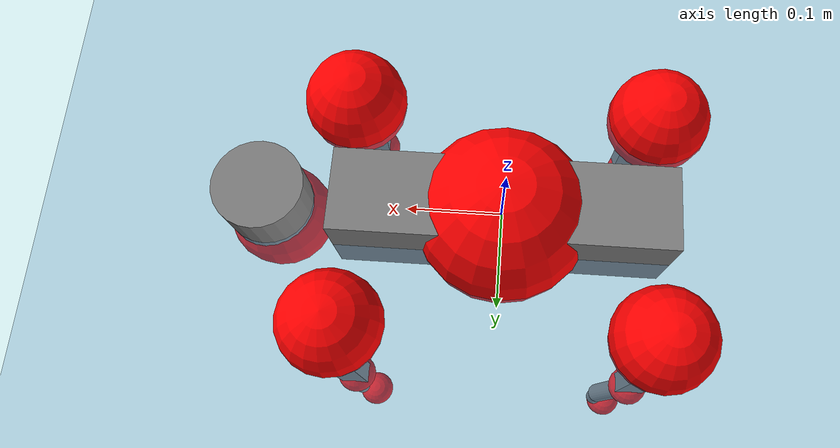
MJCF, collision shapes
<mujoco model="go2">
  <compiler angle="radian" assetdir="assets" balanceinertia="true" inertiafromgeom="false"/>

  <option timestep="0.005" density="1.2" viscosity="2e-05"/>

  <size nkey="1"/>

  <visual>
    <quality shadowsize="8192"/>
    <map shadowclip="0.5"/>
  </visual>

  <default>
    <default class="/">
      <geom contype="0" conaffinity="0" group="1" solref="-1000 -80"/>
      <site size="0.01 0.005 0.005" group="5"/>
      <general forcelimited="true" biastype="affine" gainprm="20" biasprm="0 -20 -0.5"/>
      <default class="go2">
        <joint armature="0.01" damping="0.01" frictionloss="0.2"/>
        <geom condim="1" margin="0.001"/>
        <default class="visual">
          <geom type="mesh" group="2"/>
        </default>
        <default class="collision">
          <geom group="3"/>
          <default class="foot">
            <geom size="0.022 0 0" condim="6" priority="1" friction="0.8 0.02 0.01" solimp="0.015 1 0.022"/>
          </default>
        </default>
        <default class="reward_collision_sphere">
          <geom group="5" rgba="1 0 0 1"/>
        </default>
      </default>
    </default>
  </default>

  <asset>
    <texture type="skybox" colorspace="auto" name="//unnamed_texture_0" builtin="gradient" rgb1="0.95 0.95 0.95" rgb2="0.95 0.95 0.95" width="100" height="600"/>
    <texture type="2d" colorspace="auto" name="texplane" builtin="checker" rgb1="0.345 0.575 0.748" rgb2="0.345 0.575 0.748" markrgb="1 1 1" width="512" height="512"/>
    <material name="MatPlane" class="/" texture="texplane" texuniform="true" texrepeat="2 2" specular="0.9"/>
    <material name="metal" class="/" rgba="0.9 0.95 0.95 1"/>
    <material name="black" class="/" rgba="0 0 0 1"/>
    <material name="white" class="/"/>
    <material name="gray" class="/" rgba="0.671705 0.692426 0.77427 1"/>
    <mesh name="base_0" class="/" file="base_0.obj"/>
    <mesh name="base_1" class="/" file="base_1.obj"/>
    <mesh name="base_2" class="/" file="base_2.obj"/>
    <mesh name="base_3" class="/" file="base_3.obj"/>
    <mesh name="base_4" class="/" file="base_4.obj"/>
    <mesh name="hip_0" class="/" file="hip_0.obj"/>
    <mesh name="hip_1" class="/" file="hip_1.obj"/>
    <mesh name="thigh_0" class="/" file="thigh_0.obj"/>
    <mesh name="thigh_1" class="/" file="thigh_1.obj"/>
    <mesh name="thigh_mirror_0" class="/" file="thigh_mirror_0.obj"/>
    <mesh name="thigh_mirror_1" class="/" file="thigh_mirror_1.obj"/>
    <mesh name="calf_0" class="/" file="calf_0.obj"/>
    <mesh name="calf_1" class="/" file="calf_1.obj"/>
    <mesh name="calf_mirror_0" class="/" file="calf_mirror_0.obj"/>
    <mesh name="calf_mirror_1" class="/" file="calf_mirror_1.obj"/>
    <mesh name="foot" class="/" file="foot.obj"/>
  </asset>

  <worldbody>
    <geom name="floor" class="/" size="100 100 0.125" type="plane" group="0" material="MatPlane"/>
    <light name="toplight_shadow" class="/" pos="0 0 5" dir="0.0990148 0.0990148 -0.990148" type="directional" ambient="0.04 0.04 0.04" diffuse="0.55 0.55 0.55" specular="0.12 0.12 0.12"/>
    <light name="toplight_fill" class="/" pos="0 0 5" dir="0.0990148 0.0990148 -0.990148" type="directional" castshadow="false" ambient="0.04 0.04 0.04" diffuse="0.3 0.3 0.3" specular="0.08 0.08 0.08"/>
    <body name="trunk" childclass="go2" pos="-0.00103795 0.000202392 -0.00232591" quat="0.999999 0.00101713 0.000648616 -0.000478769">
      <inertial pos="0.0167472 0.00266271 -0.00484649" quat="0.0101748 0.718721 0.000510708 0.695224" mass="5.51352" diaginertia="0.0548472 0.13591 0.0119065"/>
      <joint name="//unnamed_joint_0" type="free" armature="0" damping="0" frictionloss="0"/>
      <geom name="//unnamed_geom_1" class="visual" material="black" mesh="base_0"/>
      <geom name="//unnamed_geom_2" class="visual" material="black" mesh="base_1"/>
      <geom name="//unnamed_geom_3" class="visual" material="black" mesh="base_2"/>
      <geom name="//unnamed_geom_4" class="visual" material="white" mesh="base_3"/>
      <geom name="//unnamed_geom_5" class="visual" material="gray" mesh="base_4"/>
      <geom name="trunk_1" class="collision" size="0.174874 0.0434627 0.052992" type="box"/>
      <geom name="trunk_2" class="collision" size="0.0464842 0.0418358" pos="0.247417 0 0.00861344" type="cylinder"/>
      <geom name="trunk_3" class="collision" size="0.0436951" pos="0.254362 0 -0.0516806"/>
      <geom name="//unnamed_geom_9" class="reward_collision_sphere" size="0.0929684"/>
      <geom name="//unnamed_geom_10" class="reward_collision_sphere" size="0.055781" pos="0.243076 0 -0.0387605"/>
      <site name="imu" pos="-0.0269115 0.0108807 0.0225276" size="0.00929684"/>
      <camera name="track" pos="0 -2.11916 0" quat="0.707107 0.707107 0 0" mode="trackcom"/>
      <camera name="ego_camera" pos="0.270856 0 0.0387605" quat="-0.5 -0.5 0.5 0.5"/>
      <body name="FL_hip" pos="0.168059 0.051618 0.00142008" quat="1 1.68194e-05 -0.00017984 -0.000124118">
        <inertial pos="-0.0073635 0.00270806 -0.00187959" quat="0.50327 0.501535 0.506697 0.488304" mass="0.530805" diaginertia="0.000438839 0.000776512 0.00022173"/>
        <joint name="FL_hip_joint" pos="0 0 0" axis="0.999983 0.0036665 -0.00457511" range="-1.05005 1.08792" armature="0.00920779" damping="0" frictionloss="0.203424"/>
        <geom name="//unnamed_geom_11" class="visual" material="metal" mesh="hip_0"/>
        <geom name="//unnamed_geom_12" class="visual" material="gray" mesh="hip_1"/>
        <geom name="//unnamed_geom_13" class="collision" size="0.0427654 0.0185937" pos="0 0.0847662 0" quat="0.707107 0.707107 0 0" type="cylinder"/>
        <geom name="//unnamed_geom_14" class="reward_collision_sphere" size="0.055781" pos="0 0.0741704 0"/>
        <body name="FL_thigh" pos="-0.0035616 0.102641 0.0017764" quat="1 0.00020735 0.000121636 -0.000171834">
          <inertial pos="-0.00210905 -0.0233658 -0.0281372" quat="0.829533 0.0844189 -0.0206207 0.551654" mass="0.886203" diaginertia="0.0028018 0.00754155 0.000388137"/>
          <joint name="FL_thigh_joint" pos="0 0 0" axis="-0.00296021 0.999995 0.000729509" stiffness="0.00908415" range="-1.60822 3.48381" armature="0.00817407" damping="0.0186648" frictionloss="0.185966"/>
          <geom name="//unnamed_geom_15" class="visual" material="metal" mesh="thigh_0"/>
          <geom name="//unnamed_geom_16" class="visual" material="gray" mesh="thigh_1"/>
          <geom name="//unnamed_geom_17" class="collision" size="0.0990113 0.0113886 0.0158046" pos="0 0 -0.0917331" quat="0.707107 0 0.707107 0" type="box"/>
          <body name="FL_calf" pos="0.000831004 -0.000773367 -0.184313" quat="1 -8.88458e-05 7.23491e-05 -0.000103856">
            <inertial pos="0.00358782 -0.00316624 -0.12232" quat="0.71049 0.0014187 -0.00458541 0.703691" mass="0.194536" diaginertia="0.000708741 0.00192922 2.505e-05"/>
            <joint name="FL_calf_joint" pos="0 0 0" axis="-0.00584215 0.999857 -0.0158909" range="-2.76233 -0.791074" armature="0.0094588" damping="0" frictionloss="0.206444"/>
            <geom name="//unnamed_geom_18" class="visual" material="gray" mesh="calf_0"/>
            <geom name="//unnamed_geom_19" class="visual" material="black" mesh="calf_1"/>
            <geom name="FL_calf0" class="collision" size="0.0111562 0.055781" pos="0.00694504 0 -0.0516806" quat="0.994493 0 -0.104807 0" type="cylinder"/>
            <geom name="//unnamed_geom_21" class="collision" size="0.0102265 0.0302147" pos="0.0173626 0 -0.127479" quat="0.999688 0 0.0249974 0" type="cylinder"/>
            <geom name="//unnamed_geom_22" class="visual" pos="0 0 -0.183466" quat="1 0 0 0" material="black" mesh="foot"/>
            <geom name="FL_foot" class="foot" size="0.0153468" pos="-0.00173626 0 -0.183466"/>
            <geom name="//unnamed_geom_24" class="reward_collision_sphere" size="0.0232421"/>
            <geom name="//unnamed_geom_25" class="reward_collision_sphere" size="0.0232421" pos="-0.00173626 0 -0.183466"/>
            <site name="FL_foot" class="foot" pos="-0.00173626 0 -0.183466" size="0.00929684"/>
          </body>
        </body>
      </body>
      <body name="FR_hip" pos="0.167554 -0.0480786 0.00241953" quat="0.999999 -0.00100507 0.000360462 -0.000462401">
        <inertial pos="-0.00492763 -0.0017493 0.000315156" quat="0.491614 0.508924 0.506503 0.492713" mass="0.559715" diaginertia="0.000430064 0.000790503 0.000224339"/>
        <joint name="FR_hip_joint" pos="0 0 0" axis="0.999945 -0.008467 0.00625389" range="-1.09845 1.01056" armature="0.00910568" damping="0" frictionloss="0.208919"/>
        <geom name="//unnamed_geom_26" class="visual" pos="0 1.72693e-09 7.40716e-08" quat="4.63268e-05 1 0 0" material="metal" mesh="hip_0"/>
        <geom name="//unnamed_geom_27" class="visual" pos="0 2.79956e-09 -1.83207e-07" quat="4.63268e-05 1 0 0" material="gray" mesh="hip_1"/>
        <geom name="//unnamed_geom_28" class="collision" size="0.0427654 0.0185937" pos="0 -0.0847662 0" quat="0.707107 0.707107 0 0" type="cylinder"/>
        <geom name="//unnamed_geom_29" class="reward_collision_sphere" size="0.055781" pos="0 -0.0741704 0"/>
        <body name="FR_thigh" pos="-0.000516511 -0.103608 3.38511e-05" quat="1 0.000654494 -0.000220279 -0.000307959">
          <inertial pos="-0.00380836 0.0242564 -0.0286268" quat="0.552253 -0.0198237 0.0854277 0.829051" mass="0.959617" diaginertia="0.00294452 0.0075431 0.000423897"/>
          <joint name="FR_thigh_joint" pos="0 0 0" axis="0.00589992 -0.99997 -0.00497474" stiffness="0.013038" range="-3.49471 1.52632" armature="0.00867067" damping="0.00716201" frictionloss="0.160111"/>
          <geom name="//unnamed_geom_30" class="visual" material="metal" mesh="thigh_mirror_0"/>
          <geom name="//unnamed_geom_31" class="visual" material="gray" mesh="thigh_mirror_1"/>
          <geom name="//unnamed_geom_32" class="collision" size="0.0990113 0.0113886 0.0158046" pos="0 0 -0.0917331" quat="0.707107 0 0.707107 0" type="box"/>
          <body name="FR_calf" pos="-0.00320975 -0.00180107 -0.18114" quat="1 -0.000158794 -0.000228991 -0.000265978">
            <inertial pos="0.00618452 -0.00189125 -0.11934" quat="0.705547 0.00266176 -0.00542464 0.708637" mass="0.190027" diaginertia="0.000713622 0.00195526 2.36301e-05"/>
            <joint name="FR_calf_joint" pos="0 0 0" axis="-3.72094e-05 -0.999999 -0.00121641" range="0.828409 2.73539" armature="0.00904635" damping="0" frictionloss="0.170823"/>
            <geom name="//unnamed_geom_33" class="visual" material="gray" mesh="calf_mirror_0"/>
            <geom name="//unnamed_geom_34" class="visual" material="black" mesh="calf_mirror_1"/>
            <geom name="FR_calf0" class="collision" size="0.0120859 0.055781" pos="0.0086813 0 -0.0516806" quat="0.995004 0 -0.0998334 0" type="cylinder"/>
            <geom name="//unnamed_geom_36" class="collision" size="0.0102265 0.0302147" pos="0.0173626 0 -0.127479" quat="0.999688 0 0.0249974 0" type="cylinder"/>
            <geom name="//unnamed_geom_37" class="visual" pos="0 0 -0.183466" quat="1 0 0 0" material="black" mesh="foot"/>
            <geom name="FR_foot" class="foot" size="0.0205598" pos="-0.00173626 0 -0.183466"/>
            <geom name="//unnamed_geom_39" class="reward_collision_sphere" size="0.0232421"/>
            <geom name="//unnamed_geom_40" class="reward_collision_sphere" size="0.0232421" pos="-0.00173626 0 -0.183466"/>
            <site name="FR_foot" class="foot" pos="-0.00173626 0 -0.183466" size="0.00929684"/>
          </body>
        </body>
      </body>
      <body name="RL_hip" pos="-0.168059 0.0470526 0.000858791" quat="1 -0.000422619 0.000297088 -0.000578725">
        <inertial pos="0.00459266 -0.000347454 -0.00220493" quat="0.507253 0.495855 0.495183 0.501613" mass="0.53638" diaginertia="0.000415816 0.000783456 0.00021376"/>
        <joint name="RL_hip_joint" pos="0 0 0" axis="-0.999984 0.000411557 -0.00561889" range="-1.10419 1.09798" armature="0.0105649" damping="0.0159083" frictionloss="0.188258"/>
        <geom name="//unnamed_geom_41" class="visual" pos="-5.91136e-11 0 -1.15876e-08" quat="4.63268e-05 0 1 0" material="metal" mesh="hip_0"/>
        <geom name="//unnamed_geom_42" class="visual" pos="-9.58301e-11 0 -1.02766e-08" quat="4.63268e-05 0 1 0" material="gray" mesh="hip_1"/>
        <geom name="//unnamed_geom_43" class="collision" size="0.0427654 0.0185937" pos="0 0.0847662 0" quat="0.707107 0.707107 0 0" type="cylinder"/>
        <geom name="//unnamed_geom_44" class="reward_collision_sphere" size="0.055781" pos="0 0.0741704 0"/>
        <body name="RL_thigh" pos="-0.00140697 0.098688 -0.000416252" quat="0.999999 -2.52452e-05 0.000328596 0.00134162">
          <inertial pos="-0.00115034 -0.0261012 -0.0304133" quat="0.82955 0.0845832 -0.0202988 0.551616" mass="0.94845" diaginertia="0.00309946 0.00787693 0.000440247"/>
          <joint name="RL_thigh_joint" pos="0 0 0" axis="-0.0071482 0.999886 0.0132741" stiffness="0.0125565" range="-0.572144 4.53775" armature="0.00948358" damping="0.00656914" frictionloss="0.198755"/>
          <geom name="//unnamed_geom_45" class="visual" material="metal" mesh="thigh_0"/>
          <geom name="//unnamed_geom_46" class="visual" material="gray" mesh="thigh_1"/>
          <geom name="//unnamed_geom_47" class="collision" size="0.0990113 0.0113886 0.0158046" pos="0 0 -0.0917331" quat="0.707107 0 0.707107 0" type="box"/>
          <body name="RL_calf" pos="-0.00160544 0.00143141 -0.186615" quat="0.999999 0.000684655 -0.000622963 0.000936294">
            <inertial pos="0.00303581 0.00217588 -0.123754" quat="0.71803 0.00908559 -0.00783532 0.695909" mass="0.18718" diaginertia="0.000707422 0.0018475 2.47031e-05"/>
            <joint name="RL_calf_joint" pos="0 0 0" axis="-0.00572649 0.999964 -0.00623532" stiffness="0.00440401" range="-2.74294 -0.874282" armature="0.0105734" damping="0" frictionloss="0.188738"/>
            <geom name="//unnamed_geom_48" class="visual" material="gray" mesh="calf_0"/>
            <geom name="//unnamed_geom_49" class="visual" material="black" mesh="calf_1"/>
            <geom name="RL_calf0" class="collision" size="0.0120859 0.055781" pos="0.0086813 0 -0.0516806" quat="0.995004 0 -0.0998334 0" type="cylinder"/>
            <geom name="//unnamed_geom_51" class="collision" size="0.0102265 0.0302147" pos="0.0173626 0 -0.127479" quat="0.999688 0 0.0249974 0" type="cylinder"/>
            <geom name="//unnamed_geom_52" class="visual" pos="0 0 -0.183466" quat="1 0 0 0" material="black" mesh="foot"/>
            <geom name="RL_foot" class="foot" size="0.0198894" pos="-0.00173626 0 -0.183466"/>
            <geom name="//unnamed_geom_54" class="reward_collision_sphere" size="0.0232421"/>
            <geom name="//unnamed_geom_55" class="reward_collision_sphere" size="0.0232421" pos="-0.00173626 0 -0.183466"/>
            <site name="RL_foot" class="foot" pos="-0.00173626 0 -0.183466" size="0.00929684"/>
          </body>
        </body>
      </body>
      <body name="RR_hip" pos="-0.165523 -0.0496489 -0.00352863" quat="1 -8.70004e-05 3.44547e-05 -0.000541291">
        <inertial pos="0.0017664 -0.00420941 -0.00100483" quat="0.499137 0.507835 0.493162 0.499757" mass="0.547489" diaginertia="0.000462722 0.000823924 0.000239681"/>
        <joint name="RR_hip_joint" pos="0 0 0" axis="-0.999945 -0.00865563 0.00588509" range="-1.07437 1.04858" armature="0.00922009" damping="0.0071164" frictionloss="0.204789"/>
        <geom name="//unnamed_geom_56" class="visual" pos="6.57415e-11 1.72693e-09 -8.56592e-08" quat="2.14617e-09 4.63268e-05 4.63268e-05 -1" material="metal" mesh="hip_0"/>
        <geom name="//unnamed_geom_57" class="visual" pos="7.94362e-11 2.79956e-09 1.72931e-07" quat="2.14617e-09 4.63268e-05 4.63268e-05 -1" material="gray" mesh="hip_1"/>
        <geom name="//unnamed_geom_58" class="collision" size="0.0427654 0.0185937" pos="0 -0.0847662 0" quat="0.707107 0.707107 0 0" type="cylinder"/>
        <geom name="//unnamed_geom_59" class="reward_collision_sphere" size="0.055781" pos="0 -0.0741704 0"/>
        <body name="RR_thigh" pos="0.00130517 -0.100085 -0.00222598" quat="1 -0.000493264 0.000186228 -0.000185848">
          <inertial pos="-0.00107986 0.0223341 -0.0293214" quat="0.548337 -0.0313759 0.0809878 0.831735" mass="0.90033" diaginertia="0.00303316 0.00774657 0.000412969"/>
          <joint name="RR_thigh_joint" pos="0 0 0" axis="0.00692155 -0.999871 -0.0144714" range="-4.53873 0.468275" armature="0.00931108" damping="0.00054436" frictionloss="0.189335"/>
          <geom name="//unnamed_geom_60" class="visual" material="metal" mesh="thigh_mirror_0"/>
          <geom name="//unnamed_geom_61" class="visual" material="gray" mesh="thigh_mirror_1"/>
          <geom name="//unnamed_geom_62" class="collision" size="0.0990113 0.0113886 0.0158046" pos="0 0 -0.0917331" quat="0.707107 0 0.707107 0" type="box"/>
          <body name="RR_calf" pos="-0.00282264 0.00228247 -0.1857" quat="1 -9.28832e-05 -0.00049961 -0.000801318">
            <inertial pos="0.00533131 0.00123599 -0.122597" quat="0.711297 -0.00100125 -0.00496096 0.702873" mass="0.201782" diaginertia="0.000765736 0.00205746 2.50785e-05"/>
            <joint name="RR_calf_joint" pos="0 0 0" axis="-0.0080753 -0.999918 -0.00991381" range="0.890439 2.7374" armature="0.0094552" damping="0.00313898" frictionloss="0.188133"/>
            <geom name="//unnamed_geom_63" class="visual" material="gray" mesh="calf_mirror_0"/>
            <geom name="//unnamed_geom_64" class="visual" material="black" mesh="calf_mirror_1"/>
            <geom name="RR_calf0" class="collision" size="0.0120859 0.055781" pos="0.0086813 0 -0.0516806" quat="0.995004 0 -0.0998334 0" type="cylinder"/>
            <geom name="//unnamed_geom_66" class="collision" size="0.0102265 0.0302147" pos="0.0173626 0 -0.127479" quat="0.999688 0 0.0249974 0" type="cylinder"/>
            <geom name="//unnamed_geom_67" class="visual" pos="0 0 -0.183466" quat="1 0 0 0" material="black" mesh="foot"/>
            <geom name="RR_foot" class="foot" size="0.0230229" pos="-0.00173626 0 -0.183466"/>
            <geom name="//unnamed_geom_69" class="reward_collision_sphere" size="0.0232421"/>
            <geom name="//unnamed_geom_70" class="reward_collision_sphere" size="0.0232421" pos="-0.00173626 0 -0.183466"/>
            <site name="RR_foot" class="foot" pos="-0.00173626 0 -0.183466" size="0.00929684"/>
          </body>
        </body>
      </body>
    </body>
  </worldbody>

  <contact>
    <pair class="/" geom1="floor" geom2="FL_foot" name="//unnamed_contact_0"/>
    <pair class="/" geom1="floor" geom2="FR_foot" name="//unnamed_contact_1"/>
    <pair class="/" geom1="floor" geom2="RL_foot" name="//unnamed_contact_2"/>
    <pair class="/" geom1="floor" geom2="RR_foot" name="//unnamed_contact_3"/>
  </contact>

  <actuator>
    <general name="FL_hip" class="/" joint="FL_hip_joint" forcerange="-21.6677 21.6677" gainprm="18.289" biasprm="0 -18.289 -0.465871"/>
    <general name="FL_thigh" class="/" joint="FL_thigh_joint" forcerange="-21.3583 21.3583" gainprm="18.289" biasprm="0 -18.289 -0.465871"/>
    <general name="FL_calf" class="/" joint="FL_calf_joint" forcerange="-45.5384 45.5384" gainprm="18.289" biasprm="0 -18.289 -0.465871"/>
    <general name="FR_hip" class="/" joint="FR_hip_joint" forcerange="-22.8612 22.8612" gainprm="18.289" biasprm="0 -18.289 -0.465871"/>
    <general name="FR_thigh" class="/" joint="FR_thigh_joint" forcerange="-23.6514 23.6514" gainprm="18.289" biasprm="0 -18.289 -0.465871"/>
    <general name="FR_calf" class="/" joint="FR_calf_joint" forcerange="-41.0315 41.0315" gainprm="18.289" biasprm="0 -18.289 -0.465871"/>
    <general name="RL_hip" class="/" joint="RL_hip_joint" forcerange="-21.6736 21.6736" gainprm="18.289" biasprm="0 -18.289 -0.465871"/>
    <general name="RL_thigh" class="/" joint="RL_thigh_joint" forcerange="-20.0993 20.0993" gainprm="18.289" biasprm="0 -18.289 -0.465871"/>
    <general name="RL_calf" class="/" joint="RL_calf_joint" forcerange="-46.6474 46.6474" gainprm="18.289" biasprm="0 -18.289 -0.465871"/>
    <general name="RR_hip" class="/" joint="RR_hip_joint" forcerange="-22.243 22.243" gainprm="18.289" biasprm="0 -18.289 -0.465871"/>
    <general name="RR_thigh" class="/" joint="RR_thigh_joint" forcerange="-21.6048 21.6048" gainprm="18.289" biasprm="0 -18.289 -0.465871"/>
    <general name="RR_calf" class="/" joint="RR_calf_joint" forcerange="-46.0429 46.0429" gainprm="18.289" biasprm="0 -18.289 -0.465871"/>
  </actuator>

  <sensor>
    <gyro site="imu" name="imu_angular_velocity"/>
    <velocimeter site="imu" name="imu_linear_velocity"/>
    <framelinvel objtype="site" objname="FL_foot" name="FL_foot_global_linear_velocity"/>
    <framelinvel objtype="site" objname="FR_foot" name="FR_foot_global_linear_velocity"/>
    <framelinvel objtype="site" objname="RL_foot" name="RL_foot_global_linear_velocity"/>
    <framelinvel objtype="site" objname="RR_foot" name="RR_foot_global_linear_velocity"/>
  </sensor>

  <keyframe>
    <key name="home" qpos="0 0 0.325 1 0 0 0 0.1 0.8 -1.5 -0.1 -0.8 1.5 -0.1 0.8 -1.5 0.1 -0.8 1.5"/>
  </keyframe>
</mujoco>
